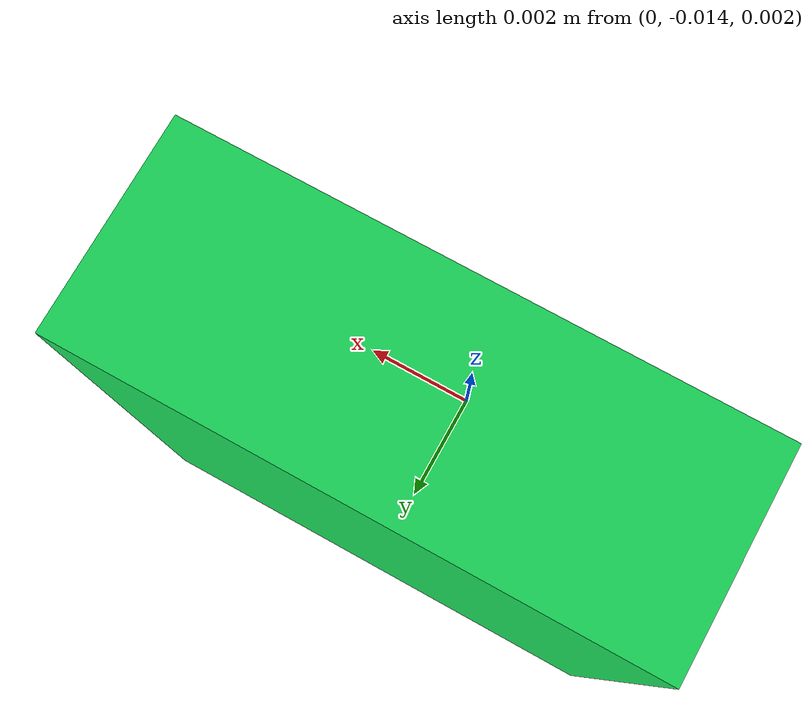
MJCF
<?xml version="1.0" ?>
<mujoco model="t2_latch_bare">
  <compiler angle="radian" autolimits="true" meshdir="/home/ftk3187/github/ASSY/m24_design_closure/out/latch_mesh_assets"/>
  <option timestep="0.0001" integrator="implicitfast" cone="elliptic" impratio="10" gravity="0 0 0"/>
  <visual>
    <headlight ambient="0.5 0.5 0.5" diffuse="0.6 0.6 0.6" specular="0.2 0.2 0.2"/>
    <global offwidth="1280" offheight="960"/>
  </visual>
  <default>
    <geom density="0" contype="0" conaffinity="0" group="2"/>
  </default>
  <asset>
    <material name="cab" rgba="0.60 0.66 0.72 0.30"/>
    <material name="recv" rgba="0.85 0.30 0.30 1"/>
    <material name="drawer" rgba="0.95 0.72 0.35 1"/>
    <material name="hook" rgba="0.20 0.55 0.95 1"/>
    <material name="mk" rgba="0.10 0.85 0.35 1"/>
  </asset>
  <worldbody>
    <light pos="0.02 -0.2 0.3" dir="-0.05 0.3 -1" directional="true" diffuse="0.5 0.5 0.5"/>
    <camera name="cutaway" pos="0.03 -0.11 0.05" xyaxes="1 0 0 0 0.4 0.92"/>
    <camera name="zoom" pos="0.040 -0.040 0.024" xyaxes="1 0 0 0 0.45 0.89"/>
    <body name="drawer" pos="0 0 0">
      <inertial mass="0.051500000" pos="0.000665049 0.001087379 0.004353398" quat="-0.019310523 0.688804150 -0.021071380 0.724383838" diaginertia="1.493315924e-05 1.131665391e-05 4.464400932e-06"/>
      <joint name="drawer_slide" type="slide" axis="1 0 0" pos="0 0 0" limited="true" range="0 0.060000" damping="150" solreflimit="0.002 1" solimplimit="0.99 0.9999 1e-5 0.5 2"/>
      <geom name="mk_drawer" type="box" pos="0 -0.012 0.006" size="0.004 0.0015 0.004" material="mk"/>
    </body>
  </worldbody>
  <equality>
    <joint name="latch" joint1="drawer_slide" polycoef="0 0 0 0 0" active="false" solref="-1e8 -1e4" solimp="0.9999 0.99999 1e-6 0.5 2"/>
  </equality>
  <actuator>
    <velocity name="drive" joint="drawer_slide" kv="600"/>
  </actuator>
</mujoco>
